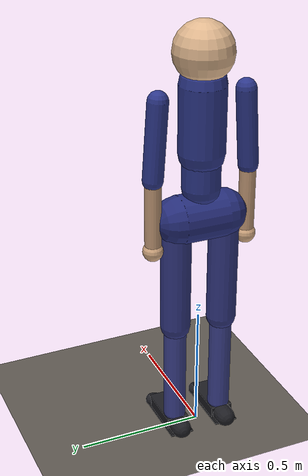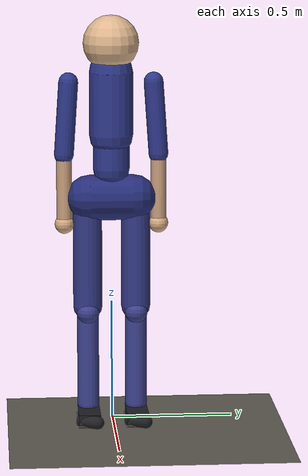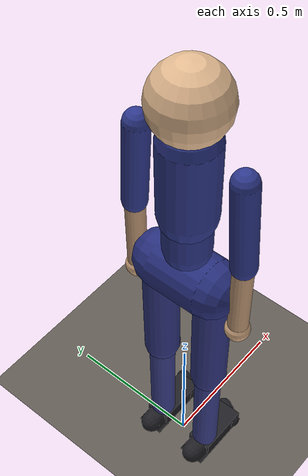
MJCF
<mujoco model="realistic_humanoid">

  <compiler angle="degree" coordinate="local"/>
  <option timestep="0.002" gravity="0 0 -9.81" iterations="50" solver="Newton"/>

  <default>
    <joint damping="2.0" armature="0.02" stiffness="0.0" limited="true"/>
    <geom friction="1.2 0.005 0.0001" density="900" condim="3"/>
    <motor ctrlrange="-200 200" ctrllimited="true"/>
  </default>

  <asset>
    <!-- Ground textures -->
    <texture name="tex_ground" type="2d" builtin="checker"
             width="1024" height="1024"
             rgb1="0.32 0.30 0.28" rgb2="0.42 0.40 0.36"/>
    <material name="mat_ground" texture="tex_ground" texrepeat="6 6"
              reflectance="0.05" specular="0.1" shininess="0.05"/>

    <!-- Robot materials -->
    <material name="mat_torso"      rgba="0.18 0.22 0.55 1"/>   <!-- dark navy suit -->
    <material name="mat_pelvis"     rgba="0.15 0.18 0.48 1"/>
    <material name="mat_head"       rgba="0.88 0.72 0.56 1"/>   <!-- skin tone -->
    <material name="mat_neck"       rgba="0.88 0.72 0.56 1"/>
    <material name="mat_arm_upper"  rgba="0.18 0.22 0.55 1"/>
    <material name="mat_arm_lower"  rgba="0.78 0.62 0.48 1"/>   <!-- skin forearm -->
    <material name="mat_hand"       rgba="0.85 0.68 0.52 1"/>
    <material name="mat_leg_upper"  rgba="0.20 0.22 0.52 1"/>   <!-- trousers -->
    <material name="mat_leg_lower"  rgba="0.24 0.26 0.56 1"/>
    <material name="mat_foot"       rgba="0.12 0.12 0.14 1"/>   <!-- dark shoes -->
    <material name="mat_shoe_sole"  rgba="0.08 0.08 0.09 1"/>
  </asset>

  <worldbody>

    <light name="sun"       pos="0 0 10"  dir="0 -0.3 -1"  diffuse="0.85 0.85 0.80" specular="0.2 0.2 0.2" castshadow="true"/>
    <light name="fill"      pos="5 -5 6"  dir="-1 1 -1"    diffuse="0.35 0.35 0.40" specular="0.0 0.0 0.0" castshadow="false"/>
    <light name="backlight" pos="-3 3 5"  dir="1 -0.5 -1"  diffuse="0.20 0.20 0.25" specular="0.0 0.0 0.0" castshadow="false"/>

    <!-- Ground -->
    <geom name="ground" type="plane" size="20 20 0.1" material="mat_ground" pos="0 0 0"/>

    <!--
      ── TORSO + SPINE CHAIN ─────────────────────────────────────────
      Root freejoint at pelvis center (hip height ≈ 0.92 m).
      Spine: pelvis → lower_back → upper_back → chest.
    -->
    <body name="pelvis" pos="0 0 0.94">
      <freejoint name="root"/>
      <geom name="pelvis_geom" type="capsule"
            fromto="0 -0.09 0 0 0.09 0"
            size="0.095" material="mat_pelvis"/>

      <!-- Lower back -->
      <body name="lower_back" pos="0 0 0.12">
        <joint name="lower_back_x" type="hinge" axis="1 0 0" range="-25 25" damping="3"/>
        <joint name="lower_back_y" type="hinge" axis="0 1 0" range="-20 20" damping="3"/>
        <geom name="lower_back_geom" type="capsule"
              fromto="0 0 0 0 0 0.13"
              size="0.075" material="mat_torso"/>

        <!-- Chest / upper torso -->
        <body name="chest" pos="0 0 0.14">
          <joint name="chest_x" type="hinge" axis="1 0 0" range="-20 20" damping="3"/>
          <geom name="chest_geom" type="capsule"
                fromto="0 0 0 0 0 0.26"
                size="0.090" material="mat_torso"/>

          <!-- Neck -->
          <body name="neck" pos="0 0 0.28">
            <joint name="neck_x" type="hinge" axis="1 0 0" range="-40 40" damping="1"/>
            <joint name="neck_y" type="hinge" axis="0 0 1" range="-60 60" damping="1"/>
            <geom name="neck_geom" type="capsule"
                  fromto="0 0 0 0 0 0.085"
                  size="0.038" material="mat_neck"/>

            <!-- Head -->
            <body name="head" pos="0 0 0.10">
              <geom name="head_geom"  type="sphere" size="0.115" material="mat_head"/>
              <!-- Eyes (small dark spheres for realism) -->
              <geom name="eye_l" type="sphere" size="0.018"
                    pos="0.08 0.035 0.02" rgba="0.1 0.1 0.1 1"/>
              <geom name="eye_r" type="sphere" size="0.018"
                    pos="0.08 -0.035 0.02" rgba="0.1 0.1 0.1 1"/>
            </body>
          </body>

          <!-- ── LEFT ARM ──────────────────────────────────────── -->
          <body name="left_upper_arm" pos="0 0.175 0.22">
            <joint name="left_shoulder_x" type="hinge" axis="1 0 0" range="-90 90"  damping="2"/>
            <joint name="left_shoulder_y" type="hinge" axis="0 1 0" range="-60 150" damping="2"/>
            <joint name="left_shoulder_z" type="hinge" axis="0 0 1" range="-60 60"  damping="1"/>
            <geom name="left_upper_arm_geom" type="capsule"
                  fromto="0 0 0 0 0.02 -0.30"
                  size="0.040" material="mat_arm_upper"/>
            <body name="left_lower_arm" pos="0 0.02 -0.32">
              <joint name="left_elbow" type="hinge" axis="0 1 0" range="-130 10" damping="1.5"/>
              <geom name="left_lower_arm_geom" type="capsule"
                    fromto="0 0 0 0 0 -0.26"
                    size="0.032" material="mat_arm_lower"/>
              <body name="left_hand" pos="0 0 -0.27">
                <joint name="left_wrist" type="hinge" axis="0 1 0" range="-60 60" damping="0.5"/>
                <geom name="left_hand_geom" type="sphere" size="0.040" material="mat_hand"/>
              </body>
            </body>
          </body>

          <!-- ── RIGHT ARM ─────────────────────────────────────── -->
          <body name="right_upper_arm" pos="0 -0.175 0.22">
            <joint name="right_shoulder_x" type="hinge" axis="1 0 0" range="-90 90"  damping="2"/>
            <joint name="right_shoulder_y" type="hinge" axis="0 1 0" range="-60 150" damping="2"/>
            <joint name="right_shoulder_z" type="hinge" axis="0 0 1" range="-60 60"  damping="1"/>
            <geom name="right_upper_arm_geom" type="capsule"
                  fromto="0 0 0 0 -0.02 -0.30"
                  size="0.040" material="mat_arm_upper"/>
            <body name="right_lower_arm" pos="0 -0.02 -0.32">
              <joint name="right_elbow" type="hinge" axis="0 1 0" range="-130 10" damping="1.5"/>
              <geom name="right_lower_arm_geom" type="capsule"
                    fromto="0 0 0 0 0 -0.26"
                    size="0.032" material="mat_arm_lower"/>
              <body name="right_hand" pos="0 0 -0.27">
                <joint name="right_wrist" type="hinge" axis="0 1 0" range="-60 60" damping="0.5"/>
                <geom name="right_hand_geom" type="sphere" size="0.040" material="mat_hand"/>
              </body>
            </body>
          </body>

        </body><!-- chest -->
      </body><!-- lower_back -->

      <!-- ── LEFT LEG ─────────────────────────────────────────────── -->
      <body name="left_upper_leg" pos="0 0.10 -0.04">
        <joint name="left_hip_x" type="hinge" axis="1 0 0" range="-30 30"  damping="4"/>
        <joint name="left_hip_y" type="hinge" axis="0 1 0" range="-50 100" damping="4"/>
        <joint name="left_hip_z" type="hinge" axis="0 0 1" range="-25 25"  damping="3"/>
        <geom name="left_upper_leg_geom" type="capsule"
              fromto="0 0 0 0 0 -0.42"
              size="0.060" material="mat_leg_upper"/>
        <body name="left_lower_leg" pos="0 0 -0.44">
          <joint name="left_knee" type="hinge" axis="0 1 0" range="-120 5" damping="3"/>
          <geom name="left_lower_leg_geom" type="capsule"
                fromto="0 0 0 0 0 -0.40"
                size="0.045" material="mat_leg_lower"/>
          <!-- Knee cap bump -->
          <geom name="left_knee_cap" type="sphere" size="0.048"
                pos="0.025 0 0" rgba="0.24 0.26 0.56 1"/>
          <body name="left_foot" pos="0 0 -0.42">
            <joint name="left_ankle_y" type="hinge" axis="0 1 0" range="-35 25" damping="2"/>
            <joint name="left_ankle_x" type="hinge" axis="1 0 0" range="-15 15" damping="1"/>
            <!-- Heel -->
            <geom name="left_heel" type="capsule"
                  fromto="-0.07 0 -0.02 -0.01 0 -0.02"
                  size="0.040" material="mat_foot"/>
            <!-- Mid-foot -->
            <geom name="left_midfoot" type="box"
                  size="0.095 0.045 0.025"
                  pos="0.06 0 -0.015" material="mat_foot"/>
            <!-- Toe -->
            <geom name="left_toe" type="capsule"
                  fromto="0.13 -0.03 -0.02 0.16 0.03 -0.02"
                  size="0.028" material="mat_foot"/>
            <!-- Sole (thin contact surface) -->
            <geom name="left_sole" type="box"
                  size="0.12 0.048 0.008"
                  pos="0.04 0 -0.045"
                  material="mat_shoe_sole" friction="1.4 0.005 0.0001"/>
          </body>
        </body>
      </body>

      <!-- ── RIGHT LEG ────────────────────────────────────────────── -->
      <body name="right_upper_leg" pos="0 -0.10 -0.04">
        <joint name="right_hip_x" type="hinge" axis="1 0 0" range="-30 30"  damping="4"/>
        <joint name="right_hip_y" type="hinge" axis="0 1 0" range="-50 100" damping="4"/>
        <joint name="right_hip_z" type="hinge" axis="0 0 1" range="-25 25"  damping="3"/>
        <geom name="right_upper_leg_geom" type="capsule"
              fromto="0 0 0 0 0 -0.42"
              size="0.060" material="mat_leg_upper"/>
        <body name="right_lower_leg" pos="0 0 -0.44">
          <joint name="right_knee" type="hinge" axis="0 1 0" range="-120 5" damping="3"/>
          <geom name="right_lower_leg_geom" type="capsule"
                fromto="0 0 0 0 0 -0.40"
                size="0.045" material="mat_leg_lower"/>
          <geom name="right_knee_cap" type="sphere" size="0.048"
                pos="0.025 0 0" rgba="0.24 0.26 0.56 1"/>
          <body name="right_foot" pos="0 0 -0.42">
            <joint name="right_ankle_y" type="hinge" axis="0 1 0" range="-35 25" damping="2"/>
            <joint name="right_ankle_x" type="hinge" axis="1 0 0" range="-15 15" damping="1"/>
            <geom name="right_heel" type="capsule"
                  fromto="-0.07 0 -0.02 -0.01 0 -0.02"
                  size="0.040" material="mat_foot"/>
            <geom name="right_midfoot" type="box"
                  size="0.095 0.045 0.025"
                  pos="0.06 0 -0.015" material="mat_foot"/>
            <geom name="right_toe" type="capsule"
                  fromto="0.13 -0.03 -0.02 0.16 0.03 -0.02"
                  size="0.028" material="mat_foot"/>
            <geom name="right_sole" type="box"
                  size="0.12 0.048 0.008"
                  pos="0.04 0 -0.045"
                  material="mat_shoe_sole" friction="1.4 0.005 0.0001"/>
          </body>
        </body>
      </body>

    </body><!-- pelvis -->
  </worldbody>

  <actuator>
    <!-- Legs (primary locomotion) -->
    <motor name="left_hip_y"       joint="left_hip_y"        gear="100"/>
    <motor name="left_hip_x"       joint="left_hip_x"        gear="60"/>
    <motor name="left_hip_z"       joint="left_hip_z"        gear="40"/>
    <motor name="left_knee"        joint="left_knee"         gear="100"/>
    <motor name="left_ankle_y"     joint="left_ankle_y"      gear="60"/>
    <motor name="left_ankle_x"     joint="left_ankle_x"      gear="30"/>

    <motor name="right_hip_y"      joint="right_hip_y"       gear="100"/>
    <motor name="right_hip_x"      joint="right_hip_x"       gear="60"/>
    <motor name="right_hip_z"      joint="right_hip_z"       gear="40"/>
    <motor name="right_knee"       joint="right_knee"        gear="100"/>
    <motor name="right_ankle_y"    joint="right_ankle_y"     gear="60"/>
    <motor name="right_ankle_x"    joint="right_ankle_x"     gear="30"/>

    <!-- Spine (CCM flywheel torque interface) -->
    <motor name="lower_back_x"     joint="lower_back_x"      gear="50"/>
    <motor name="lower_back_y"     joint="lower_back_y"      gear="50"/>
    <motor name="chest_x"          joint="chest_x"           gear="30"/>

    <!-- Arms (balance + swing) -->
    <motor name="left_shoulder_y"  joint="left_shoulder_y"   gear="30"/>
    <motor name="left_elbow"       joint="left_elbow"        gear="20"/>
    <motor name="right_shoulder_y" joint="right_shoulder_y"  gear="30"/>
    <motor name="right_elbow"      joint="right_elbow"       gear="20"/>
  </actuator>

</mujoco>
